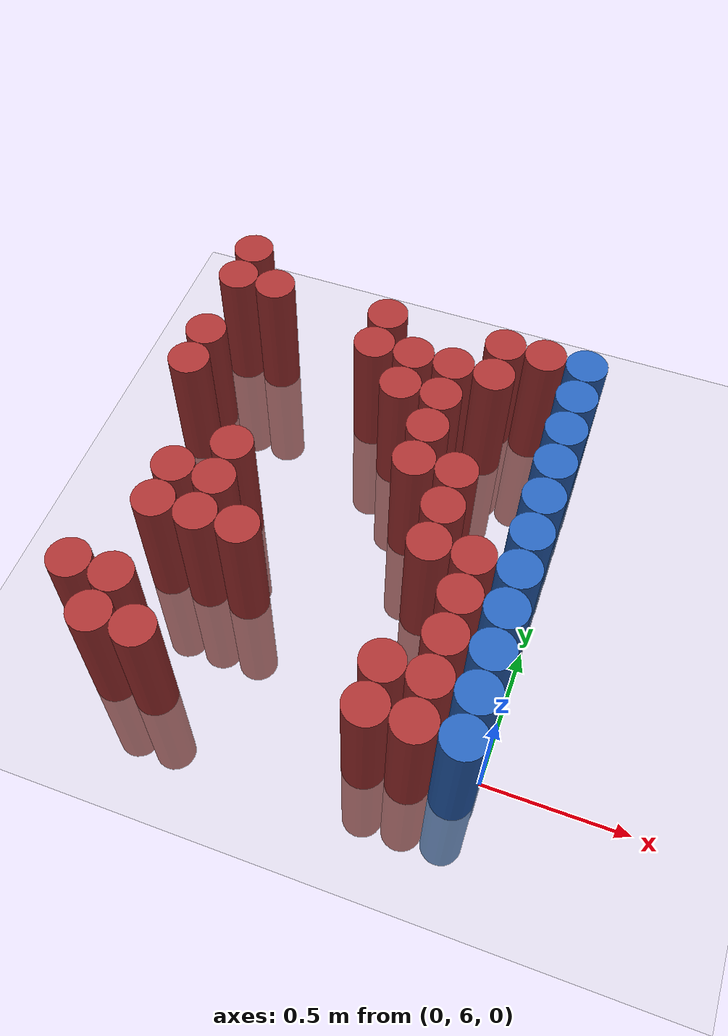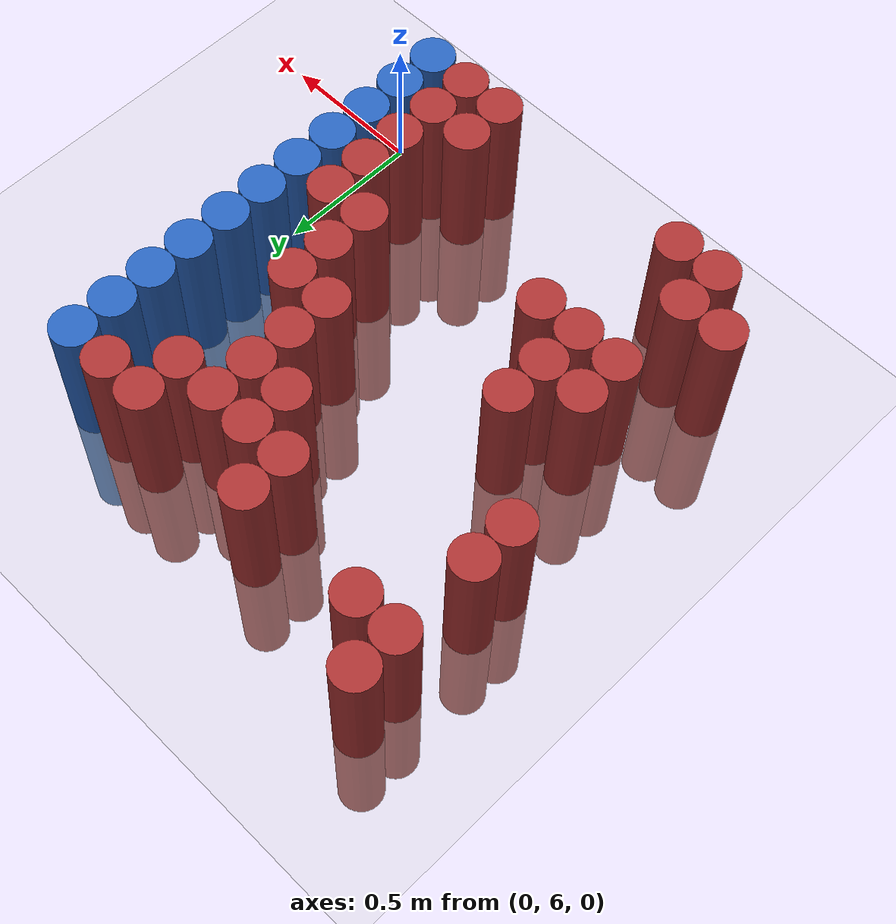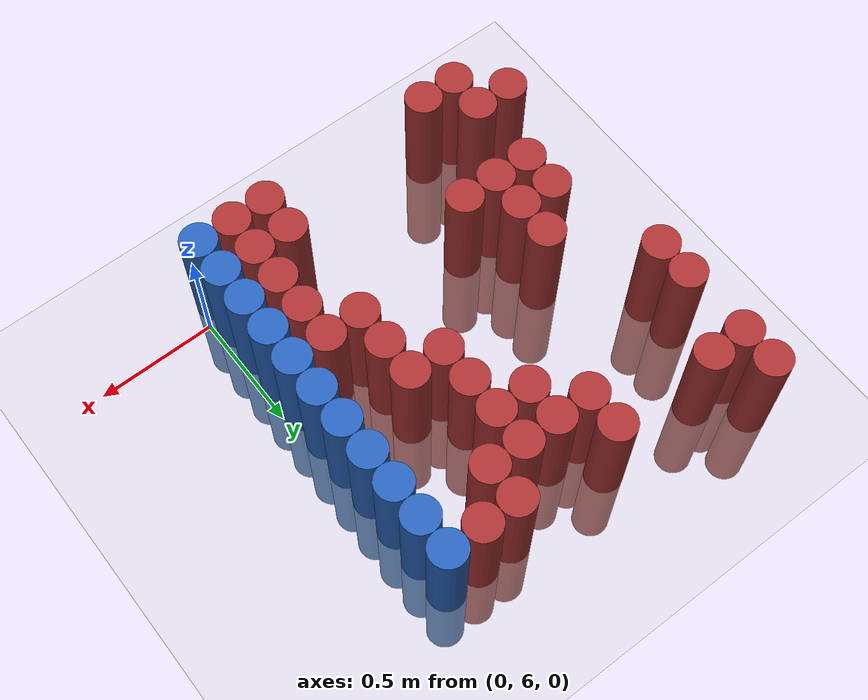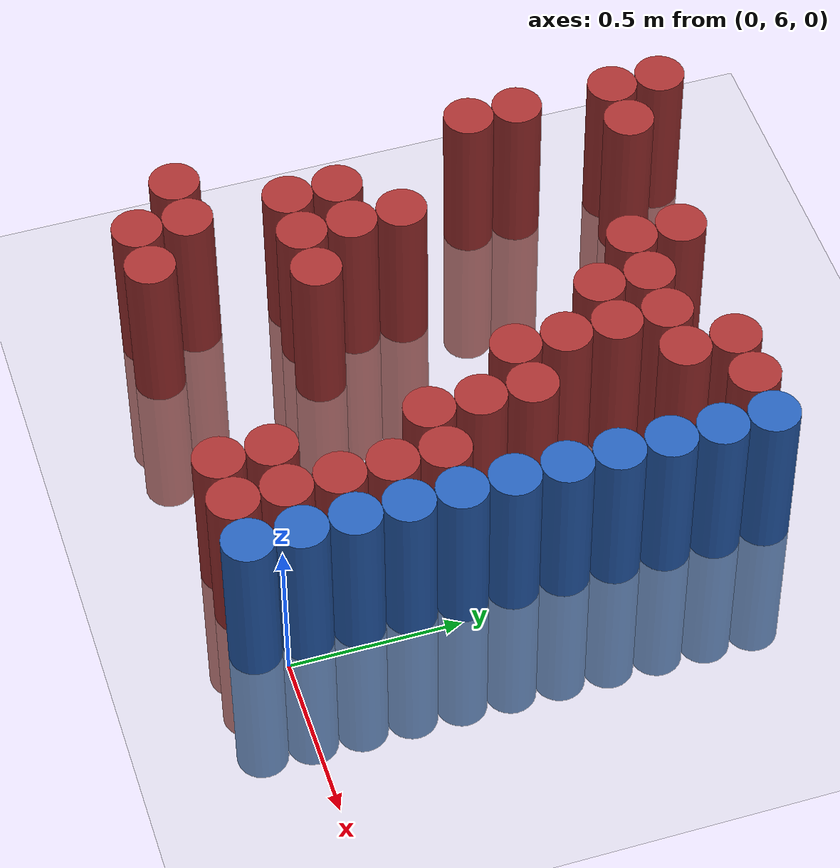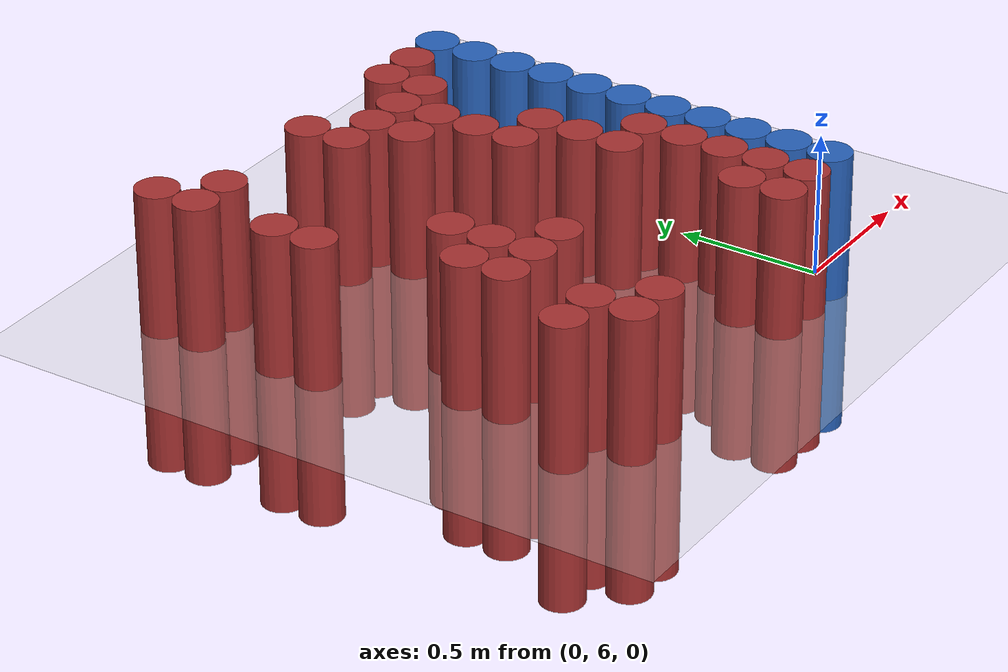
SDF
<sdf version="1.6">
 <world name="default">
  <model name="ground_plane">
   <static>1</static>
   <link name="link">
    <collision name="collision">
     <geometry><plane><normal>0 0 1</normal><size>100 100</size></plane></geometry>
     <surface><friction><ode><mu>100</mu><mu2>50</mu2></ode></friction></surface>
    </collision>
    <visual name="visual">
     <cast_shadows>0</cast_shadows>
     <geometry><plane><normal>0 0 1</normal><size>100 100</size></plane></geometry>
     <material>
      <script><uri>file://media/materials/scripts/gazebo.material</uri><name>Gazebo/Grey</name></script>
     </material>
    </visual>
   </link>
  </model>
  <model name="unit_cylinder_224">
   <static>1</static>
   <pose>-1.425000 6.075000 0.000000 0.000000 0.000000 0.000000</pose>
   <link name="link">
    <inertial>
     <mass>1</mass>
     <inertia><ixx>0.145833</ixx><ixy>0</ixy><ixz>0</ixz><iyy>0.145833</iyy><iyz>0</iyz><izz>0.125</izz></inertia>
    </inertial>
    <collision name="collision">
     <geometry><cylinder><radius>0.075000</radius><length>1</length></cylinder></geometry>
    </collision>
    <visual name="visual">
     <geometry><cylinder><radius>0.075000</radius><length>1</length></cylinder></geometry>
     <material>
      <ambient>0.648000 0.192000 0.192000 1</ambient>
      <diffuse>0.648000 0.192000 0.192000 1</diffuse>
     </material>
     <material>
      <script><name>Gazebo/Grey</name><uri>file://media/materials/scripts/gazebo.material</uri></script>
     </material>
    </visual>
   </link>
  </model>
  <model name="unit_cylinder_225">
   <static>1</static>
   <pose>-1.425000 6.975000 0.000000 0.000000 0.000000 0.000000</pose>
   <link name="link">
    <inertial>
     <mass>1</mass>
     <inertia><ixx>0.145833</ixx><ixy>0</ixy><ixz>0</ixz><iyy>0.145833</iyy><iyz>0</iyz><izz>0.125</izz></inertia>
    </inertial>
    <collision name="collision">
     <geometry><cylinder><radius>0.075000</radius><length>1</length></cylinder></geometry>
    </collision>
    <visual name="visual">
     <geometry><cylinder><radius>0.075000</radius><length>1</length></cylinder></geometry>
     <material>
      <ambient>0.648000 0.192000 0.192000 1</ambient>
      <diffuse>0.648000 0.192000 0.192000 1</diffuse>
     </material>
     <material>
      <script><name>Gazebo/Grey</name><uri>file://media/materials/scripts/gazebo.material</uri></script>
     </material>
    </visual>
   </link>
  </model>
  <model name="unit_cylinder_226">
   <static>1</static>
   <pose>-1.425000 7.125000 0.000000 0.000000 0.000000 0.000000</pose>
   <link name="link">
    <inertial>
     <mass>1</mass>
     <inertia><ixx>0.145833</ixx><ixy>0</ixy><ixz>0</ixz><iyy>0.145833</iyy><iyz>0</iyz><izz>0.125</izz></inertia>
    </inertial>
    <collision name="collision">
     <geometry><cylinder><radius>0.075000</radius><length>1</length></cylinder></geometry>
    </collision>
    <visual name="visual">
     <geometry><cylinder><radius>0.075000</radius><length>1</length></cylinder></geometry>
     <material>
      <ambient>0.648000 0.192000 0.192000 1</ambient>
      <diffuse>0.648000 0.192000 0.192000 1</diffuse>
     </material>
     <material>
      <script><name>Gazebo/Grey</name><uri>file://media/materials/scripts/gazebo.material</uri></script>
     </material>
    </visual>
   </link>
  </model>
  <model name="unit_cylinder_227">
   <static>1</static>
   <pose>-1.425000 7.425000 0.000000 0.000000 0.000000 0.000000</pose>
   <link name="link">
    <inertial>
     <mass>1</mass>
     <inertia><ixx>0.145833</ixx><ixy>0</ixy><ixz>0</ixz><iyy>0.145833</iyy><iyz>0</iyz><izz>0.125</izz></inertia>
    </inertial>
    <collision name="collision">
     <geometry><cylinder><radius>0.075000</radius><length>1</length></cylinder></geometry>
    </collision>
    <visual name="visual">
     <geometry><cylinder><radius>0.075000</radius><length>1</length></cylinder></geometry>
     <material>
      <ambient>0.648000 0.192000 0.192000 1</ambient>
      <diffuse>0.648000 0.192000 0.192000 1</diffuse>
     </material>
     <material>
      <script><name>Gazebo/Grey</name><uri>file://media/materials/scripts/gazebo.material</uri></script>
     </material>
    </visual>
   </link>
  </model>
  <model name="unit_cylinder_228">
   <static>1</static>
   <pose>-1.425000 7.575000 0.000000 0.000000 0.000000 0.000000</pose>
   <link name="link">
    <inertial>
     <mass>1</mass>
     <inertia><ixx>0.145833</ixx><ixy>0</ixy><ixz>0</ixz><iyy>0.145833</iyy><iyz>0</iyz><izz>0.125</izz></inertia>
    </inertial>
    <collision name="collision">
     <geometry><cylinder><radius>0.075000</radius><length>1</length></cylinder></geometry>
    </collision>
    <visual name="visual">
     <geometry><cylinder><radius>0.075000</radius><length>1</length></cylinder></geometry>
     <material>
      <ambient>0.648000 0.192000 0.192000 1</ambient>
      <diffuse>0.648000 0.192000 0.192000 1</diffuse>
     </material>
     <material>
      <script><name>Gazebo/Grey</name><uri>file://media/materials/scripts/gazebo.material</uri></script>
     </material>
    </visual>
   </link>
  </model>
  <model name="unit_cylinder_239">
   <static>1</static>
   <pose>-1.275000 5.925000 0.000000 0.000000 0.000000 0.000000</pose>
   <link name="link">
    <inertial>
     <mass>1</mass>
     <inertia><ixx>0.145833</ixx><ixy>0</ixy><ixz>0</ixz><iyy>0.145833</iyy><iyz>0</iyz><izz>0.125</izz></inertia>
    </inertial>
    <collision name="collision">
     <geometry><cylinder><radius>0.075000</radius><length>1</length></cylinder></geometry>
    </collision>
    <visual name="visual">
     <geometry><cylinder><radius>0.075000</radius><length>1</length></cylinder></geometry>
     <material>
      <ambient>0.648000 0.192000 0.192000 1</ambient>
      <diffuse>0.648000 0.192000 0.192000 1</diffuse>
     </material>
     <material>
      <script><name>Gazebo/Grey</name><uri>file://media/materials/scripts/gazebo.material</uri></script>
     </material>
    </visual>
   </link>
  </model>
  <model name="unit_cylinder_240">
   <static>1</static>
   <pose>-1.275000 6.075000 0.000000 0.000000 0.000000 0.000000</pose>
   <link name="link">
    <inertial>
     <mass>1</mass>
     <inertia><ixx>0.145833</ixx><ixy>0</ixy><ixz>0</ixz><iyy>0.145833</iyy><iyz>0</iyz><izz>0.125</izz></inertia>
    </inertial>
    <collision name="collision">
     <geometry><cylinder><radius>0.075000</radius><length>1</length></cylinder></geometry>
    </collision>
    <visual name="visual">
     <geometry><cylinder><radius>0.075000</radius><length>1</length></cylinder></geometry>
     <material>
      <ambient>0.648000 0.192000 0.192000 1</ambient>
      <diffuse>0.648000 0.192000 0.192000 1</diffuse>
     </material>
     <material>
      <script><name>Gazebo/Grey</name><uri>file://media/materials/scripts/gazebo.material</uri></script>
     </material>
    </visual>
   </link>
  </model>
  <model name="unit_cylinder_241">
   <static>1</static>
   <pose>-1.275000 6.375000 0.000000 0.000000 0.000000 0.000000</pose>
   <link name="link">
    <inertial>
     <mass>1</mass>
     <inertia><ixx>0.145833</ixx><ixy>0</ixy><ixz>0</ixz><iyy>0.145833</iyy><iyz>0</iyz><izz>0.125</izz></inertia>
    </inertial>
    <collision name="collision">
     <geometry><cylinder><radius>0.075000</radius><length>1</length></cylinder></geometry>
    </collision>
    <visual name="visual">
     <geometry><cylinder><radius>0.075000</radius><length>1</length></cylinder></geometry>
     <material>
      <ambient>0.648000 0.192000 0.192000 1</ambient>
      <diffuse>0.648000 0.192000 0.192000 1</diffuse>
     </material>
     <material>
      <script><name>Gazebo/Grey</name><uri>file://media/materials/scripts/gazebo.material</uri></script>
     </material>
    </visual>
   </link>
  </model>
  <model name="unit_cylinder_242">
   <static>1</static>
   <pose>-1.275000 6.525000 0.000000 0.000000 0.000000 0.000000</pose>
   <link name="link">
    <inertial>
     <mass>1</mass>
     <inertia><ixx>0.145833</ixx><ixy>0</ixy><ixz>0</ixz><iyy>0.145833</iyy><iyz>0</iyz><izz>0.125</izz></inertia>
    </inertial>
    <collision name="collision">
     <geometry><cylinder><radius>0.075000</radius><length>1</length></cylinder></geometry>
    </collision>
    <visual name="visual">
     <geometry><cylinder><radius>0.075000</radius><length>1</length></cylinder></geometry>
     <material>
      <ambient>0.648000 0.192000 0.192000 1</ambient>
      <diffuse>0.648000 0.192000 0.192000 1</diffuse>
     </material>
     <material>
      <script><name>Gazebo/Grey</name><uri>file://media/materials/scripts/gazebo.material</uri></script>
     </material>
    </visual>
   </link>
  </model>
  <model name="unit_cylinder_243">
   <static>1</static>
   <pose>-1.275000 7.425000 0.000000 0.000000 0.000000 0.000000</pose>
   <link name="link">
    <inertial>
     <mass>1</mass>
     <inertia><ixx>0.145833</ixx><ixy>0</ixy><ixz>0</ixz><iyy>0.145833</iyy><iyz>0</iyz><izz>0.125</izz></inertia>
    </inertial>
    <collision name="collision">
     <geometry><cylinder><radius>0.075000</radius><length>1</length></cylinder></geometry>
    </collision>
    <visual name="visual">
     <geometry><cylinder><radius>0.075000</radius><length>1</length></cylinder></geometry>
     <material>
      <ambient>0.648000 0.192000 0.192000 1</ambient>
      <diffuse>0.648000 0.192000 0.192000 1</diffuse>
     </material>
     <material>
      <script><name>Gazebo/Grey</name><uri>file://media/materials/scripts/gazebo.material</uri></script>
     </material>
    </visual>
   </link>
  </model>
  <model name="unit_cylinder_250">
   <static>1</static>
   <pose>-1.125000 5.925000 0.000000 0.000000 0.000000 0.000000</pose>
   <link name="link">
    <inertial>
     <mass>1</mass>
     <inertia><ixx>0.145833</ixx><ixy>0</ixy><ixz>0</ixz><iyy>0.145833</iyy><iyz>0</iyz><izz>0.125</izz></inertia>
    </inertial>
    <collision name="collision">
     <geometry><cylinder><radius>0.075000</radius><length>1</length></cylinder></geometry>
    </collision>
    <visual name="visual">
     <geometry><cylinder><radius>0.075000</radius><length>1</length></cylinder></geometry>
     <material>
      <ambient>0.648000 0.192000 0.192000 1</ambient>
      <diffuse>0.648000 0.192000 0.192000 1</diffuse>
     </material>
     <material>
      <script><name>Gazebo/Grey</name><uri>file://media/materials/scripts/gazebo.material</uri></script>
     </material>
    </visual>
   </link>
  </model>
  <model name="unit_cylinder_251">
   <static>1</static>
   <pose>-1.125000 6.375000 0.000000 0.000000 0.000000 0.000000</pose>
   <link name="link">
    <inertial>
     <mass>1</mass>
     <inertia><ixx>0.145833</ixx><ixy>0</ixy><ixz>0</ixz><iyy>0.145833</iyy><iyz>0</iyz><izz>0.125</izz></inertia>
    </inertial>
    <collision name="collision">
     <geometry><cylinder><radius>0.075000</radius><length>1</length></cylinder></geometry>
    </collision>
    <visual name="visual">
     <geometry><cylinder><radius>0.075000</radius><length>1</length></cylinder></geometry>
     <material>
      <ambient>0.648000 0.192000 0.192000 1</ambient>
      <diffuse>0.648000 0.192000 0.192000 1</diffuse>
     </material>
     <material>
      <script><name>Gazebo/Grey</name><uri>file://media/materials/scripts/gazebo.material</uri></script>
     </material>
    </visual>
   </link>
  </model>
  <model name="unit_cylinder_252">
   <static>1</static>
   <pose>-1.125000 6.525000 0.000000 0.000000 0.000000 0.000000</pose>
   <link name="link">
    <inertial>
     <mass>1</mass>
     <inertia><ixx>0.145833</ixx><ixy>0</ixy><ixz>0</ixz><iyy>0.145833</iyy><iyz>0</iyz><izz>0.125</izz></inertia>
    </inertial>
    <collision name="collision">
     <geometry><cylinder><radius>0.075000</radius><length>1</length></cylinder></geometry>
    </collision>
    <visual name="visual">
     <geometry><cylinder><radius>0.075000</radius><length>1</length></cylinder></geometry>
     <material>
      <ambient>0.648000 0.192000 0.192000 1</ambient>
      <diffuse>0.648000 0.192000 0.192000 1</diffuse>
     </material>
     <material>
      <script><name>Gazebo/Grey</name><uri>file://media/materials/scripts/gazebo.material</uri></script>
     </material>
    </visual>
   </link>
  </model>
  <model name="unit_cylinder_253">
   <static>1</static>
   <pose>-1.125000 6.675000 0.000000 0.000000 0.000000 0.000000</pose>
   <link name="link">
    <inertial>
     <mass>1</mass>
     <inertia><ixx>0.145833</ixx><ixy>0</ixy><ixz>0</ixz><iyy>0.145833</iyy><iyz>0</iyz><izz>0.125</izz></inertia>
    </inertial>
    <collision name="collision">
     <geometry><cylinder><radius>0.075000</radius><length>1</length></cylinder></geometry>
    </collision>
    <visual name="visual">
     <geometry><cylinder><radius>0.075000</radius><length>1</length></cylinder></geometry>
     <material>
      <ambient>0.648000 0.192000 0.192000 1</ambient>
      <diffuse>0.648000 0.192000 0.192000 1</diffuse>
     </material>
     <material>
      <script><name>Gazebo/Grey</name><uri>file://media/materials/scripts/gazebo.material</uri></script>
     </material>
    </visual>
   </link>
  </model>
  <model name="unit_cylinder_254">
   <static>1</static>
   <pose>-0.975000 6.375000 0.000000 0.000000 0.000000 0.000000</pose>
   <link name="link">
    <inertial>
     <mass>1</mass>
     <inertia><ixx>0.145833</ixx><ixy>0</ixy><ixz>0</ixz><iyy>0.145833</iyy><iyz>0</iyz><izz>0.125</izz></inertia>
    </inertial>
    <collision name="collision">
     <geometry><cylinder><radius>0.075000</radius><length>1</length></cylinder></geometry>
    </collision>
    <visual name="visual">
     <geometry><cylinder><radius>0.075000</radius><length>1</length></cylinder></geometry>
     <material>
      <ambient>0.648000 0.192000 0.192000 1</ambient>
      <diffuse>0.648000 0.192000 0.192000 1</diffuse>
     </material>
     <material>
      <script><name>Gazebo/Grey</name><uri>file://media/materials/scripts/gazebo.material</uri></script>
     </material>
    </visual>
   </link>
  </model>
  <model name="unit_cylinder_255">
   <static>1</static>
   <pose>-0.825000 7.275000 0.000000 0.000000 0.000000 0.000000</pose>
   <link name="link">
    <inertial>
     <mass>1</mass>
     <inertia><ixx>0.145833</ixx><ixy>0</ixy><ixz>0</ixz><iyy>0.145833</iyy><iyz>0</iyz><izz>0.125</izz></inertia>
    </inertial>
    <collision name="collision">
     <geometry><cylinder><radius>0.075000</radius><length>1</length></cylinder></geometry>
    </collision>
    <visual name="visual">
     <geometry><cylinder><radius>0.075000</radius><length>1</length></cylinder></geometry>
     <material>
      <ambient>0.648000 0.192000 0.192000 1</ambient>
      <diffuse>0.648000 0.192000 0.192000 1</diffuse>
     </material>
     <material>
      <script><name>Gazebo/Grey</name><uri>file://media/materials/scripts/gazebo.material</uri></script>
     </material>
    </visual>
   </link>
  </model>
  <model name="unit_cylinder_256">
   <static>1</static>
   <pose>-0.825000 7.425000 0.000000 0.000000 0.000000 0.000000</pose>
   <link name="link">
    <inertial>
     <mass>1</mass>
     <inertia><ixx>0.145833</ixx><ixy>0</ixy><ixz>0</ixz><iyy>0.145833</iyy><iyz>0</iyz><izz>0.125</izz></inertia>
    </inertial>
    <collision name="collision">
     <geometry><cylinder><radius>0.075000</radius><length>1</length></cylinder></geometry>
    </collision>
    <visual name="visual">
     <geometry><cylinder><radius>0.075000</radius><length>1</length></cylinder></geometry>
     <material>
      <ambient>0.648000 0.192000 0.192000 1</ambient>
      <diffuse>0.648000 0.192000 0.192000 1</diffuse>
     </material>
     <material>
      <script><name>Gazebo/Grey</name><uri>file://media/materials/scripts/gazebo.material</uri></script>
     </material>
    </visual>
   </link>
  </model>
  <model name="unit_cylinder_258">
   <static>1</static>
   <pose>-0.675000 7.125000 0.000000 0.000000 0.000000 0.000000</pose>
   <link name="link">
    <inertial>
     <mass>1</mass>
     <inertia><ixx>0.145833</ixx><ixy>0</ixy><ixz>0</ixz><iyy>0.145833</iyy><iyz>0</iyz><izz>0.125</izz></inertia>
    </inertial>
    <collision name="collision">
     <geometry><cylinder><radius>0.075000</radius><length>1</length></cylinder></geometry>
    </collision>
    <visual name="visual">
     <geometry><cylinder><radius>0.075000</radius><length>1</length></cylinder></geometry>
     <material>
      <ambient>0.648000 0.192000 0.192000 1</ambient>
      <diffuse>0.648000 0.192000 0.192000 1</diffuse>
     </material>
     <material>
      <script><name>Gazebo/Grey</name><uri>file://media/materials/scripts/gazebo.material</uri></script>
     </material>
    </visual>
   </link>
  </model>
  <model name="unit_cylinder_259">
   <static>1</static>
   <pose>-0.675000 7.275000 0.000000 0.000000 0.000000 0.000000</pose>
   <link name="link">
    <inertial>
     <mass>1</mass>
     <inertia><ixx>0.145833</ixx><ixy>0</ixy><ixz>0</ixz><iyy>0.145833</iyy><iyz>0</iyz><izz>0.125</izz></inertia>
    </inertial>
    <collision name="collision">
     <geometry><cylinder><radius>0.075000</radius><length>1</length></cylinder></geometry>
    </collision>
    <visual name="visual">
     <geometry><cylinder><radius>0.075000</radius><length>1</length></cylinder></geometry>
     <material>
      <ambient>0.648000 0.192000 0.192000 1</ambient>
      <diffuse>0.648000 0.192000 0.192000 1</diffuse>
     </material>
     <material>
      <script><name>Gazebo/Grey</name><uri>file://media/materials/scripts/gazebo.material</uri></script>
     </material>
    </visual>
   </link>
  </model>
  <model name="unit_cylinder_263">
   <static>1</static>
   <pose>-0.525000 6.825000 0.000000 0.000000 0.000000 0.000000</pose>
   <link name="link">
    <inertial>
     <mass>1</mass>
     <inertia><ixx>0.145833</ixx><ixy>0</ixy><ixz>0</ixz><iyy>0.145833</iyy><iyz>0</iyz><izz>0.125</izz></inertia>
    </inertial>
    <collision name="collision">
     <geometry><cylinder><radius>0.075000</radius><length>1</length></cylinder></geometry>
    </collision>
    <visual name="visual">
     <geometry><cylinder><radius>0.075000</radius><length>1</length></cylinder></geometry>
     <material>
      <ambient>0.648000 0.192000 0.192000 1</ambient>
      <diffuse>0.648000 0.192000 0.192000 1</diffuse>
     </material>
     <material>
      <script><name>Gazebo/Grey</name><uri>file://media/materials/scripts/gazebo.material</uri></script>
     </material>
    </visual>
   </link>
  </model>
  <model name="unit_cylinder_264">
   <static>1</static>
   <pose>-0.525000 6.975000 0.000000 0.000000 0.000000 0.000000</pose>
   <link name="link">
    <inertial>
     <mass>1</mass>
     <inertia><ixx>0.145833</ixx><ixy>0</ixy><ixz>0</ixz><iyy>0.145833</iyy><iyz>0</iyz><izz>0.125</izz></inertia>
    </inertial>
    <collision name="collision">
     <geometry><cylinder><radius>0.075000</radius><length>1</length></cylinder></geometry>
    </collision>
    <visual name="visual">
     <geometry><cylinder><radius>0.075000</radius><length>1</length></cylinder></geometry>
     <material>
      <ambient>0.648000 0.192000 0.192000 1</ambient>
      <diffuse>0.648000 0.192000 0.192000 1</diffuse>
     </material>
     <material>
      <script><name>Gazebo/Grey</name><uri>file://media/materials/scripts/gazebo.material</uri></script>
     </material>
    </visual>
   </link>
  </model>
  <model name="unit_cylinder_265">
   <static>1</static>
   <pose>-0.525000 7.125000 0.000000 0.000000 0.000000 0.000000</pose>
   <link name="link">
    <inertial>
     <mass>1</mass>
     <inertia><ixx>0.145833</ixx><ixy>0</ixy><ixz>0</ixz><iyy>0.145833</iyy><iyz>0</iyz><izz>0.125</izz></inertia>
    </inertial>
    <collision name="collision">
     <geometry><cylinder><radius>0.075000</radius><length>1</length></cylinder></geometry>
    </collision>
    <visual name="visual">
     <geometry><cylinder><radius>0.075000</radius><length>1</length></cylinder></geometry>
     <material>
      <ambient>0.648000 0.192000 0.192000 1</ambient>
      <diffuse>0.648000 0.192000 0.192000 1</diffuse>
     </material>
     <material>
      <script><name>Gazebo/Grey</name><uri>file://media/materials/scripts/gazebo.material</uri></script>
     </material>
    </visual>
   </link>
  </model>
  <model name="unit_cylinder_266">
   <static>1</static>
   <pose>-0.525000 7.275000 0.000000 0.000000 0.000000 0.000000</pose>
   <link name="link">
    <inertial>
     <mass>1</mass>
     <inertia><ixx>0.145833</ixx><ixy>0</ixy><ixz>0</ixz><iyy>0.145833</iyy><iyz>0</iyz><izz>0.125</izz></inertia>
    </inertial>
    <collision name="collision">
     <geometry><cylinder><radius>0.075000</radius><length>1</length></cylinder></geometry>
    </collision>
    <visual name="visual">
     <geometry><cylinder><radius>0.075000</radius><length>1</length></cylinder></geometry>
     <material>
      <ambient>0.648000 0.192000 0.192000 1</ambient>
      <diffuse>0.648000 0.192000 0.192000 1</diffuse>
     </material>
     <material>
      <script><name>Gazebo/Grey</name><uri>file://media/materials/scripts/gazebo.material</uri></script>
     </material>
    </visual>
   </link>
  </model>
  <model name="unit_cylinder_270">
   <static>1</static>
   <pose>-0.375000 5.925000 0.000000 0.000000 0.000000 0.000000</pose>
   <link name="link">
    <inertial>
     <mass>1</mass>
     <inertia><ixx>0.145833</ixx><ixy>0</ixy><ixz>0</ixz><iyy>0.145833</iyy><iyz>0</iyz><izz>0.125</izz></inertia>
    </inertial>
    <collision name="collision">
     <geometry><cylinder><radius>0.075000</radius><length>1</length></cylinder></geometry>
    </collision>
    <visual name="visual">
     <geometry><cylinder><radius>0.075000</radius><length>1</length></cylinder></geometry>
     <material>
      <ambient>0.648000 0.192000 0.192000 1</ambient>
      <diffuse>0.648000 0.192000 0.192000 1</diffuse>
     </material>
     <material>
      <script><name>Gazebo/Grey</name><uri>file://media/materials/scripts/gazebo.material</uri></script>
     </material>
    </visual>
   </link>
  </model>
  <model name="unit_cylinder_271">
   <static>1</static>
   <pose>-0.375000 6.075000 0.000000 0.000000 0.000000 0.000000</pose>
   <link name="link">
    <inertial>
     <mass>1</mass>
     <inertia><ixx>0.145833</ixx><ixy>0</ixy><ixz>0</ixz><iyy>0.145833</iyy><iyz>0</iyz><izz>0.125</izz></inertia>
    </inertial>
    <collision name="collision">
     <geometry><cylinder><radius>0.075000</radius><length>1</length></cylinder></geometry>
    </collision>
    <visual name="visual">
     <geometry><cylinder><radius>0.075000</radius><length>1</length></cylinder></geometry>
     <material>
      <ambient>0.648000 0.192000 0.192000 1</ambient>
      <diffuse>0.648000 0.192000 0.192000 1</diffuse>
     </material>
     <material>
      <script><name>Gazebo/Grey</name><uri>file://media/materials/scripts/gazebo.material</uri></script>
     </material>
    </visual>
   </link>
  </model>
  <model name="unit_cylinder_272">
   <static>1</static>
   <pose>-0.375000 6.525000 0.000000 0.000000 0.000000 0.000000</pose>
   <link name="link">
    <inertial>
     <mass>1</mass>
     <inertia><ixx>0.145833</ixx><ixy>0</ixy><ixz>0</ixz><iyy>0.145833</iyy><iyz>0</iyz><izz>0.125</izz></inertia>
    </inertial>
    <collision name="collision">
     <geometry><cylinder><radius>0.075000</radius><length>1</length></cylinder></geometry>
    </collision>
    <visual name="visual">
     <geometry><cylinder><radius>0.075000</radius><length>1</length></cylinder></geometry>
     <material>
      <ambient>0.648000 0.192000 0.192000 1</ambient>
      <diffuse>0.648000 0.192000 0.192000 1</diffuse>
     </material>
     <material>
      <script><name>Gazebo/Grey</name><uri>file://media/materials/scripts/gazebo.material</uri></script>
     </material>
    </visual>
   </link>
  </model>
  <model name="unit_cylinder_273">
   <static>1</static>
   <pose>-0.375000 6.675000 0.000000 0.000000 0.000000 0.000000</pose>
   <link name="link">
    <inertial>
     <mass>1</mass>
     <inertia><ixx>0.145833</ixx><ixy>0</ixy><ixz>0</ixz><iyy>0.145833</iyy><iyz>0</iyz><izz>0.125</izz></inertia>
    </inertial>
    <collision name="collision">
     <geometry><cylinder><radius>0.075000</radius><length>1</length></cylinder></geometry>
    </collision>
    <visual name="visual">
     <geometry><cylinder><radius>0.075000</radius><length>1</length></cylinder></geometry>
     <material>
      <ambient>0.648000 0.192000 0.192000 1</ambient>
      <diffuse>0.648000 0.192000 0.192000 1</diffuse>
     </material>
     <material>
      <script><name>Gazebo/Grey</name><uri>file://media/materials/scripts/gazebo.material</uri></script>
     </material>
    </visual>
   </link>
  </model>
  <model name="unit_cylinder_274">
   <static>1</static>
   <pose>-0.375000 6.825000 0.000000 0.000000 0.000000 0.000000</pose>
   <link name="link">
    <inertial>
     <mass>1</mass>
     <inertia><ixx>0.145833</ixx><ixy>0</ixy><ixz>0</ixz><iyy>0.145833</iyy><iyz>0</iyz><izz>0.125</izz></inertia>
    </inertial>
    <collision name="collision">
     <geometry><cylinder><radius>0.075000</radius><length>1</length></cylinder></geometry>
    </collision>
    <visual name="visual">
     <geometry><cylinder><radius>0.075000</radius><length>1</length></cylinder></geometry>
     <material>
      <ambient>0.648000 0.192000 0.192000 1</ambient>
      <diffuse>0.648000 0.192000 0.192000 1</diffuse>
     </material>
     <material>
      <script><name>Gazebo/Grey</name><uri>file://media/materials/scripts/gazebo.material</uri></script>
     </material>
    </visual>
   </link>
  </model>
  <model name="unit_cylinder_275">
   <static>1</static>
   <pose>-0.375000 7.275000 0.000000 0.000000 0.000000 0.000000</pose>
   <link name="link">
    <inertial>
     <mass>1</mass>
     <inertia><ixx>0.145833</ixx><ixy>0</ixy><ixz>0</ixz><iyy>0.145833</iyy><iyz>0</iyz><izz>0.125</izz></inertia>
    </inertial>
    <collision name="collision">
     <geometry><cylinder><radius>0.075000</radius><length>1</length></cylinder></geometry>
    </collision>
    <visual name="visual">
     <geometry><cylinder><radius>0.075000</radius><length>1</length></cylinder></geometry>
     <material>
      <ambient>0.648000 0.192000 0.192000 1</ambient>
      <diffuse>0.648000 0.192000 0.192000 1</diffuse>
     </material>
     <material>
      <script><name>Gazebo/Grey</name><uri>file://media/materials/scripts/gazebo.material</uri></script>
     </material>
    </visual>
   </link>
  </model>
  <model name="unit_cylinder_276">
   <static>1</static>
   <pose>-0.375000 7.425000 0.000000 0.000000 0.000000 0.000000</pose>
   <link name="link">
    <inertial>
     <mass>1</mass>
     <inertia><ixx>0.145833</ixx><ixy>0</ixy><ixz>0</ixz><iyy>0.145833</iyy><iyz>0</iyz><izz>0.125</izz></inertia>
    </inertial>
    <collision name="collision">
     <geometry><cylinder><radius>0.075000</radius><length>1</length></cylinder></geometry>
    </collision>
    <visual name="visual">
     <geometry><cylinder><radius>0.075000</radius><length>1</length></cylinder></geometry>
     <material>
      <ambient>0.648000 0.192000 0.192000 1</ambient>
      <diffuse>0.648000 0.192000 0.192000 1</diffuse>
     </material>
     <material>
      <script><name>Gazebo/Grey</name><uri>file://media/materials/scripts/gazebo.material</uri></script>
     </material>
    </visual>
   </link>
  </model>
  <model name="unit_cylinder_285">
   <static>1</static>
   <pose>-0.225000 5.925000 0.000000 0.000000 0.000000 0.000000</pose>
   <link name="link">
    <inertial>
     <mass>1</mass>
     <inertia><ixx>0.145833</ixx><ixy>0</ixy><ixz>0</ixz><iyy>0.145833</iyy><iyz>0</iyz><izz>0.125</izz></inertia>
    </inertial>
    <collision name="collision">
     <geometry><cylinder><radius>0.075000</radius><length>1</length></cylinder></geometry>
    </collision>
    <visual name="visual">
     <geometry><cylinder><radius>0.075000</radius><length>1</length></cylinder></geometry>
     <material>
      <ambient>0.648000 0.192000 0.192000 1</ambient>
      <diffuse>0.648000 0.192000 0.192000 1</diffuse>
     </material>
     <material>
      <script><name>Gazebo/Grey</name><uri>file://media/materials/scripts/gazebo.material</uri></script>
     </material>
    </visual>
   </link>
  </model>
  <model name="unit_cylinder_286">
   <static>1</static>
   <pose>-0.225000 6.075000 0.000000 0.000000 0.000000 0.000000</pose>
   <link name="link">
    <inertial>
     <mass>1</mass>
     <inertia><ixx>0.145833</ixx><ixy>0</ixy><ixz>0</ixz><iyy>0.145833</iyy><iyz>0</iyz><izz>0.125</izz></inertia>
    </inertial>
    <collision name="collision">
     <geometry><cylinder><radius>0.075000</radius><length>1</length></cylinder></geometry>
    </collision>
    <visual name="visual">
     <geometry><cylinder><radius>0.075000</radius><length>1</length></cylinder></geometry>
     <material>
      <ambient>0.648000 0.192000 0.192000 1</ambient>
      <diffuse>0.648000 0.192000 0.192000 1</diffuse>
     </material>
     <material>
      <script><name>Gazebo/Grey</name><uri>file://media/materials/scripts/gazebo.material</uri></script>
     </material>
    </visual>
   </link>
  </model>
  <model name="unit_cylinder_287">
   <static>1</static>
   <pose>-0.225000 6.225000 0.000000 0.000000 0.000000 0.000000</pose>
   <link name="link">
    <inertial>
     <mass>1</mass>
     <inertia><ixx>0.145833</ixx><ixy>0</ixy><ixz>0</ixz><iyy>0.145833</iyy><iyz>0</iyz><izz>0.125</izz></inertia>
    </inertial>
    <collision name="collision">
     <geometry><cylinder><radius>0.075000</radius><length>1</length></cylinder></geometry>
    </collision>
    <visual name="visual">
     <geometry><cylinder><radius>0.075000</radius><length>1</length></cylinder></geometry>
     <material>
      <ambient>0.648000 0.192000 0.192000 1</ambient>
      <diffuse>0.648000 0.192000 0.192000 1</diffuse>
     </material>
     <material>
      <script><name>Gazebo/Grey</name><uri>file://media/materials/scripts/gazebo.material</uri></script>
     </material>
    </visual>
   </link>
  </model>
  <model name="unit_cylinder_288">
   <static>1</static>
   <pose>-0.225000 6.375000 0.000000 0.000000 0.000000 0.000000</pose>
   <link name="link">
    <inertial>
     <mass>1</mass>
     <inertia><ixx>0.145833</ixx><ixy>0</ixy><ixz>0</ixz><iyy>0.145833</iyy><iyz>0</iyz><izz>0.125</izz></inertia>
    </inertial>
    <collision name="collision">
     <geometry><cylinder><radius>0.075000</radius><length>1</length></cylinder></geometry>
    </collision>
    <visual name="visual">
     <geometry><cylinder><radius>0.075000</radius><length>1</length></cylinder></geometry>
     <material>
      <ambient>0.648000 0.192000 0.192000 1</ambient>
      <diffuse>0.648000 0.192000 0.192000 1</diffuse>
     </material>
     <material>
      <script><name>Gazebo/Grey</name><uri>file://media/materials/scripts/gazebo.material</uri></script>
     </material>
    </visual>
   </link>
  </model>
  <model name="unit_cylinder_289">
   <static>1</static>
   <pose>-0.225000 6.525000 0.000000 0.000000 0.000000 0.000000</pose>
   <link name="link">
    <inertial>
     <mass>1</mass>
     <inertia><ixx>0.145833</ixx><ixy>0</ixy><ixz>0</ixz><iyy>0.145833</iyy><iyz>0</iyz><izz>0.125</izz></inertia>
    </inertial>
    <collision name="collision">
     <geometry><cylinder><radius>0.075000</radius><length>1</length></cylinder></geometry>
    </collision>
    <visual name="visual">
     <geometry><cylinder><radius>0.075000</radius><length>1</length></cylinder></geometry>
     <material>
      <ambient>0.648000 0.192000 0.192000 1</ambient>
      <diffuse>0.648000 0.192000 0.192000 1</diffuse>
     </material>
     <material>
      <script><name>Gazebo/Grey</name><uri>file://media/materials/scripts/gazebo.material</uri></script>
     </material>
    </visual>
   </link>
  </model>
  <model name="unit_cylinder_290">
   <static>1</static>
   <pose>-0.225000 7.425000 0.000000 0.000000 0.000000 0.000000</pose>
   <link name="link">
    <inertial>
     <mass>1</mass>
     <inertia><ixx>0.145833</ixx><ixy>0</ixy><ixz>0</ixz><iyy>0.145833</iyy><iyz>0</iyz><izz>0.125</izz></inertia>
    </inertial>
    <collision name="collision">
     <geometry><cylinder><radius>0.075000</radius><length>1</length></cylinder></geometry>
    </collision>
    <visual name="visual">
     <geometry><cylinder><radius>0.075000</radius><length>1</length></cylinder></geometry>
     <material>
      <ambient>0.648000 0.192000 0.192000 1</ambient>
      <diffuse>0.648000 0.192000 0.192000 1</diffuse>
     </material>
     <material>
      <script><name>Gazebo/Grey</name><uri>file://media/materials/scripts/gazebo.material</uri></script>
     </material>
    </visual>
   </link>
  </model>
  <model name="unit_cylinder_306">
   <static>1</static>
   <pose>-0.075000 5.925000 0.000000 0.000000 0.000000 0.000000</pose>
   <link name="link">
    <inertial>
     <mass>1</mass>
     <inertia><ixx>0.145833</ixx><ixy>0</ixy><ixz>0</ixz><iyy>0.145833</iyy><iyz>0</iyz><izz>0.125</izz></inertia>
    </inertial>
    <collision name="collision">
     <geometry><cylinder><radius>0.075000</radius><length>1</length></cylinder></geometry>
    </collision>
    <visual name="visual">
     <geometry><cylinder><radius>0.075000</radius><length>1</length></cylinder></geometry>
     <material>
      <ambient>0.152000 0.379000 0.720000 1</ambient>
      <diffuse>0.152000 0.379000 0.720000 1</diffuse>
     </material>
     <material>
      <script><name>Gazebo/Grey</name><uri>file://media/materials/scripts/gazebo.material</uri></script>
     </material>
    </visual>
   </link>
  </model>
  <model name="unit_cylinder_307">
   <static>1</static>
   <pose>-0.075000 6.075000 0.000000 0.000000 0.000000 0.000000</pose>
   <link name="link">
    <inertial>
     <mass>1</mass>
     <inertia><ixx>0.145833</ixx><ixy>0</ixy><ixz>0</ixz><iyy>0.145833</iyy><iyz>0</iyz><izz>0.125</izz></inertia>
    </inertial>
    <collision name="collision">
     <geometry><cylinder><radius>0.075000</radius><length>1</length></cylinder></geometry>
    </collision>
    <visual name="visual">
     <geometry><cylinder><radius>0.075000</radius><length>1</length></cylinder></geometry>
     <material>
      <ambient>0.152000 0.379000 0.720000 1</ambient>
      <diffuse>0.152000 0.379000 0.720000 1</diffuse>
     </material>
     <material>
      <script><name>Gazebo/Grey</name><uri>file://media/materials/scripts/gazebo.material</uri></script>
     </material>
    </visual>
   </link>
  </model>
  <model name="unit_cylinder_308">
   <static>1</static>
   <pose>-0.075000 6.225000 0.000000 0.000000 0.000000 0.000000</pose>
   <link name="link">
    <inertial>
     <mass>1</mass>
     <inertia><ixx>0.145833</ixx><ixy>0</ixy><ixz>0</ixz><iyy>0.145833</iyy><iyz>0</iyz><izz>0.125</izz></inertia>
    </inertial>
    <collision name="collision">
     <geometry><cylinder><radius>0.075000</radius><length>1</length></cylinder></geometry>
    </collision>
    <visual name="visual">
     <geometry><cylinder><radius>0.075000</radius><length>1</length></cylinder></geometry>
     <material>
      <ambient>0.152000 0.379000 0.720000 1</ambient>
      <diffuse>0.152000 0.379000 0.720000 1</diffuse>
     </material>
     <material>
      <script><name>Gazebo/Grey</name><uri>file://media/materials/scripts/gazebo.material</uri></script>
     </material>
    </visual>
   </link>
  </model>
  <model name="unit_cylinder_309">
   <static>1</static>
   <pose>-0.075000 6.375000 0.000000 0.000000 0.000000 0.000000</pose>
   <link name="link">
    <inertial>
     <mass>1</mass>
     <inertia><ixx>0.145833</ixx><ixy>0</ixy><ixz>0</ixz><iyy>0.145833</iyy><iyz>0</iyz><izz>0.125</izz></inertia>
    </inertial>
    <collision name="collision">
     <geometry><cylinder><radius>0.075000</radius><length>1</length></cylinder></geometry>
    </collision>
    <visual name="visual">
     <geometry><cylinder><radius>0.075000</radius><length>1</length></cylinder></geometry>
     <material>
      <ambient>0.152000 0.379000 0.720000 1</ambient>
      <diffuse>0.152000 0.379000 0.720000 1</diffuse>
     </material>
     <material>
      <script><name>Gazebo/Grey</name><uri>file://media/materials/scripts/gazebo.material</uri></script>
     </material>
    </visual>
   </link>
  </model>
  <model name="unit_cylinder_310">
   <static>1</static>
   <pose>-0.075000 6.525000 0.000000 0.000000 0.000000 0.000000</pose>
   <link name="link">
    <inertial>
     <mass>1</mass>
     <inertia><ixx>0.145833</ixx><ixy>0</ixy><ixz>0</ixz><iyy>0.145833</iyy><iyz>0</iyz><izz>0.125</izz></inertia>
    </inertial>
    <collision name="collision">
     <geometry><cylinder><radius>0.075000</radius><length>1</length></cylinder></geometry>
    </collision>
    <visual name="visual">
     <geometry><cylinder><radius>0.075000</radius><length>1</length></cylinder></geometry>
     <material>
      <ambient>0.152000 0.379000 0.720000 1</ambient>
      <diffuse>0.152000 0.379000 0.720000 1</diffuse>
     </material>
     <material>
      <script><name>Gazebo/Grey</name><uri>file://media/materials/scripts/gazebo.material</uri></script>
     </material>
    </visual>
   </link>
  </model>
  <model name="unit_cylinder_311">
   <static>1</static>
   <pose>-0.075000 6.675000 0.000000 0.000000 0.000000 0.000000</pose>
   <link name="link">
    <inertial>
     <mass>1</mass>
     <inertia><ixx>0.145833</ixx><ixy>0</ixy><ixz>0</ixz><iyy>0.145833</iyy><iyz>0</iyz><izz>0.125</izz></inertia>
    </inertial>
    <collision name="collision">
     <geometry><cylinder><radius>0.075000</radius><length>1</length></cylinder></geometry>
    </collision>
    <visual name="visual">
     <geometry><cylinder><radius>0.075000</radius><length>1</length></cylinder></geometry>
     <material>
      <ambient>0.152000 0.379000 0.720000 1</ambient>
      <diffuse>0.152000 0.379000 0.720000 1</diffuse>
     </material>
     <material>
      <script><name>Gazebo/Grey</name><uri>file://media/materials/scripts/gazebo.material</uri></script>
     </material>
    </visual>
   </link>
  </model>
  <model name="unit_cylinder_312">
   <static>1</static>
   <pose>-0.075000 6.825000 0.000000 0.000000 0.000000 0.000000</pose>
   <link name="link">
    <inertial>
     <mass>1</mass>
     <inertia><ixx>0.145833</ixx><ixy>0</ixy><ixz>0</ixz><iyy>0.145833</iyy><iyz>0</iyz><izz>0.125</izz></inertia>
    </inertial>
    <collision name="collision">
     <geometry><cylinder><radius>0.075000</radius><length>1</length></cylinder></geometry>
    </collision>
    <visual name="visual">
     <geometry><cylinder><radius>0.075000</radius><length>1</length></cylinder></geometry>
     <material>
      <ambient>0.152000 0.379000 0.720000 1</ambient>
      <diffuse>0.152000 0.379000 0.720000 1</diffuse>
     </material>
     <material>
      <script><name>Gazebo/Grey</name><uri>file://media/materials/scripts/gazebo.material</uri></script>
     </material>
    </visual>
   </link>
  </model>
  <model name="unit_cylinder_313">
   <static>1</static>
   <pose>-0.075000 6.975000 0.000000 0.000000 0.000000 0.000000</pose>
   <link name="link">
    <inertial>
     <mass>1</mass>
     <inertia><ixx>0.145833</ixx><ixy>0</ixy><ixz>0</ixz><iyy>0.145833</iyy><iyz>0</iyz><izz>0.125</izz></inertia>
    </inertial>
    <collision name="collision">
     <geometry><cylinder><radius>0.075000</radius><length>1</length></cylinder></geometry>
    </collision>
    <visual name="visual">
     <geometry><cylinder><radius>0.075000</radius><length>1</length></cylinder></geometry>
     <material>
      <ambient>0.152000 0.379000 0.720000 1</ambient>
      <diffuse>0.152000 0.379000 0.720000 1</diffuse>
     </material>
     <material>
      <script><name>Gazebo/Grey</name><uri>file://media/materials/scripts/gazebo.material</uri></script>
     </material>
    </visual>
   </link>
  </model>
  <model name="unit_cylinder_314">
   <static>1</static>
   <pose>-0.075000 7.125000 0.000000 0.000000 0.000000 0.000000</pose>
   <link name="link">
    <inertial>
     <mass>1</mass>
     <inertia><ixx>0.145833</ixx><ixy>0</ixy><ixz>0</ixz><iyy>0.145833</iyy><iyz>0</iyz><izz>0.125</izz></inertia>
    </inertial>
    <collision name="collision">
     <geometry><cylinder><radius>0.075000</radius><length>1</length></cylinder></geometry>
    </collision>
    <visual name="visual">
     <geometry><cylinder><radius>0.075000</radius><length>1</length></cylinder></geometry>
     <material>
      <ambient>0.152000 0.379000 0.720000 1</ambient>
      <diffuse>0.152000 0.379000 0.720000 1</diffuse>
     </material>
     <material>
      <script><name>Gazebo/Grey</name><uri>file://media/materials/scripts/gazebo.material</uri></script>
     </material>
    </visual>
   </link>
  </model>
  <model name="unit_cylinder_315">
   <static>1</static>
   <pose>-0.075000 7.275000 0.000000 0.000000 0.000000 0.000000</pose>
   <link name="link">
    <inertial>
     <mass>1</mass>
     <inertia><ixx>0.145833</ixx><ixy>0</ixy><ixz>0</ixz><iyy>0.145833</iyy><iyz>0</iyz><izz>0.125</izz></inertia>
    </inertial>
    <collision name="collision">
     <geometry><cylinder><radius>0.075000</radius><length>1</length></cylinder></geometry>
    </collision>
    <visual name="visual">
     <geometry><cylinder><radius>0.075000</radius><length>1</length></cylinder></geometry>
     <material>
      <ambient>0.152000 0.379000 0.720000 1</ambient>
      <diffuse>0.152000 0.379000 0.720000 1</diffuse>
     </material>
     <material>
      <script><name>Gazebo/Grey</name><uri>file://media/materials/scripts/gazebo.material</uri></script>
     </material>
    </visual>
   </link>
  </model>
  <model name="unit_cylinder_316">
   <static>1</static>
   <pose>-0.075000 7.425000 0.000000 0.000000 0.000000 0.000000</pose>
   <link name="link">
    <inertial>
     <mass>1</mass>
     <inertia><ixx>0.145833</ixx><ixy>0</ixy><ixz>0</ixz><iyy>0.145833</iyy><iyz>0</iyz><izz>0.125</izz></inertia>
    </inertial>
    <collision name="collision">
     <geometry><cylinder><radius>0.075000</radius><length>1</length></cylinder></geometry>
    </collision>
    <visual name="visual">
     <geometry><cylinder><radius>0.075000</radius><length>1</length></cylinder></geometry>
     <material>
      <ambient>0.152000 0.379000 0.720000 1</ambient>
      <diffuse>0.152000 0.379000 0.720000 1</diffuse>
     </material>
     <material>
      <script><name>Gazebo/Grey</name><uri>file://media/materials/scripts/gazebo.material</uri></script>
     </material>
    </visual>
   </link>
  </model>
 </world>
</sdf>
